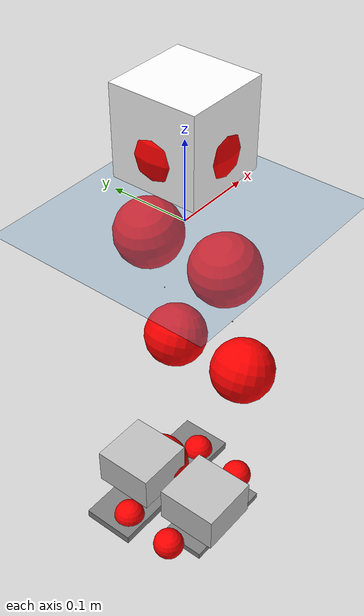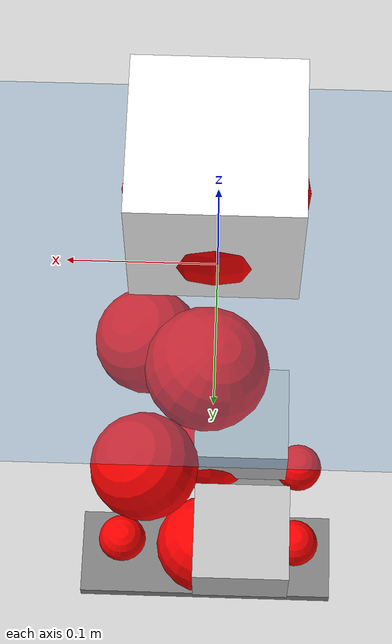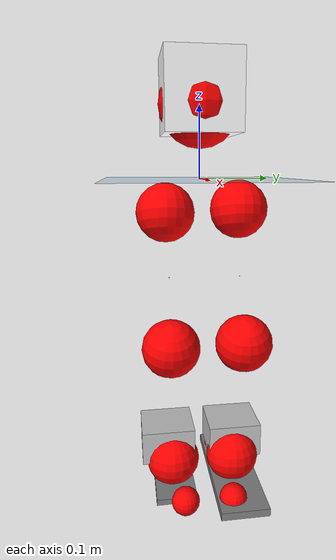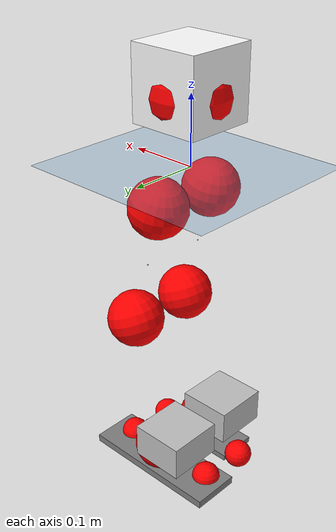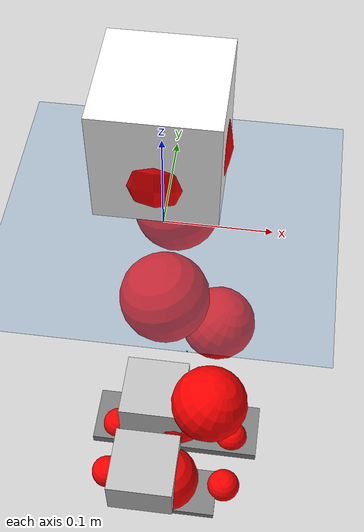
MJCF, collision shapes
<mujoco model="pi_12dof_release_v1">
  <compiler angle="radian" assetdir="assets" balanceinertia="true" inertiafromgeom="false"/>

  <option timestep="0.005" density="1.2" viscosity="2e-05"/>

  <size nkey="1"/>

  <visual>
    <quality shadowsize="8192"/>
    <map shadowclip="0.5"/>
  </visual>

  <default>
    <default class="/">
      <joint armature="0.01" damping="0.01" frictionloss="0.01"/>
      <geom contype="0" conaffinity="0" group="1" solref="-1000 -80"/>
      <site size="0.01 0.005 0.005" group="5"/>
      <general forcelimited="true" biastype="affine" gainprm="20" biasprm="0 -20 -0.5"/>
      <default class="foot">
        <geom size="0.0845 0.036 0.005" type="box" condim="6" group="4" priority="1" friction="0.9 0.2 0.2" solimp="0.015 1 0.005"/>
      </default>
      <default class="reward_collision_sphere">
        <geom group="5" rgba="1 0 0 1"/>
      </default>
    </default>
  </default>

  <asset>
    <texture type="skybox" colorspace="auto" name="//unnamed_texture_0" builtin="gradient" rgb1="0.95 0.95 0.95" rgb2="0.95 0.95 0.95" width="100" height="600"/>
    <texture type="2d" colorspace="auto" name="texplane" builtin="checker" rgb1="0.345 0.575 0.748" rgb2="0.345 0.575 0.748" markrgb="1 1 1" width="512" height="512"/>
    <material name="MatPlane" class="/" texture="texplane" texuniform="true" texrepeat="2 2" specular="0.9"/>
    <mesh name="baselink_1" class="/" file="baselink_1.STL"/>
    <mesh name="r_hip_pitch_link" class="/" file="r_hip_pitch_link.STL"/>
    <mesh name="r_hip_roll_link" class="/" file="r_hip_roll_link.STL"/>
    <mesh name="r_thigh_link" class="/" file="r_thigh_link.STL"/>
    <mesh name="r_calf_link" class="/" file="r_calf_link.STL"/>
    <mesh name="r_ankle_pitch_link" class="/" file="r_ankle_pitch_link.STL"/>
    <mesh name="r_ankle_roll_link" class="/" file="r_ankle_roll_link.STL"/>
    <mesh name="l_hip_pitch_link" class="/" file="l_hip_pitch_link.STL"/>
    <mesh name="l_hip_roll_link" class="/" file="l_hip_roll_link.STL"/>
    <mesh name="l_thigh_link" class="/" file="l_thigh_link.STL"/>
    <mesh name="l_calf_link" class="/" file="l_calf_link.STL"/>
    <mesh name="l_ankle_pitch_link" class="/" file="l_ankle_pitch_link.STL"/>
    <mesh name="l_ankle_roll_link" class="/" file="l_ankle_roll_link.STL"/>
  </asset>

  <worldbody>
    <geom name="floor" class="/" size="100 100 0.125" type="plane" group="0" material="MatPlane"/>
    <light name="toplight_shadow" class="/" pos="0 0 5" dir="0.0990148 0.0990148 -0.990148" type="directional" ambient="0.04 0.04 0.04" diffuse="0.55 0.55 0.55" specular="0.12 0.12 0.12"/>
    <light name="toplight_fill" class="/" pos="0 0 5" dir="0.0990148 0.0990148 -0.990148" type="directional" castshadow="false" ambient="0.04 0.04 0.04" diffuse="0.3 0.3 0.3" specular="0.08 0.08 0.08"/>
    <body name="trunk" pos="0.00153582 0.000469707 0.00055384" quat="1 0.000635454 -0.000577397 -0.000348207">
      <inertial pos="0.00431991 0.00265426 0.0585672" quat="0.688928 0.0079428 0.015779 0.724615" mass="2.57384" diaginertia="0.0186758 0.000730282 0.0216252"/>
      <joint name="//unnamed_joint_0" type="free"/>
      <geom name="//unnamed_geom_1" class="/" type="mesh" density="0" rgba="1 1 1 1" mesh="baselink_1"/>
      <geom name="//unnamed_geom_2" class="/" size="0.0526493 0.0526493 0.0526493" pos="0 0 0.11255" type="box" rgba="1 1 1 1"/>
      <geom name="//unnamed_geom_3" class="reward_collision_sphere" size="0.0579142" pos="0 0 0.0984816"/>
      <site name="imu" class="/" pos="0.0238835 -0.0107291 -0.0140286" size="0.0105299"/>
      <camera name="track" class="/" pos="0 -1.21931 0" quat="0.707107 0.707107 0 0" mode="trackcom"/>
      <camera name="ego_camera" class="/" pos="0.0856816 0 0.253238" quat="-0.5 -0.5 0.5 0.5"/>
      <body name="r_hip_pitch_link" pos="0.0035925 -0.0156832 -0.0474633" quat="0.992184 -0.00010938 -0.12478 0.000572941">
        <inertial pos="-0.00192481 -0.0353717 -0.000822393" quat="-0.018597 0.705941 -0.0263394 0.707536" mass="0.447295" diaginertia="0.00021966 8.27231e-06 0.000468406"/>
        <joint name="r_hip_pitch_joint" class="/" pos="0 0 0" axis="0.0169443 -0.999666 -0.0195015" range="-1.74561 1.32328" armature="0.00967555" damping="0.0299783" frictionloss="0.00937608"/>
        <geom name="//unnamed_geom_4" class="/" type="mesh" density="0" rgba="0.75294 0.75294 0.75294 1" mesh="r_hip_pitch_link"/>
        <geom name="//unnamed_geom_5" class="/" size="0.000526493 0.000526493 0.000526493" type="box" rgba="0.75294 0.75294 0.75294 1"/>
        <body name="r_hip_roll_link" pos="0.0027237 -0.0353837 -0.000611597" quat="1 0.000237027 0.000255273 -7.35096e-05">
          <inertial pos="0.000292754 -0.000722179 -0.0889858" quat="0.710349 -0.0871858 -0.0879836 0.692865" mass="0.461198" diaginertia="0.000686492 2.37116e-05 0.000696022"/>
          <joint name="r_hip_roll_joint" class="/" pos="0 0 0" axis="-0.999731 0.00250493 0.0230565" range="-0.058253 0.535652" armature="0.00946629" damping="0" frictionloss="0.0100101"/>
          <geom name="//unnamed_geom_6" class="/" type="mesh" density="0" rgba="0.75294 0.75294 0.75294 1" mesh="r_hip_roll_link"/>
          <geom name="//unnamed_geom_7" class="/" size="0.000526493 0.000526493 0.000526493" type="box" rgba="0.75294 0.75294 0.75294 1"/>
          <geom name="//unnamed_geom_8" class="reward_collision_sphere" size="0.0421194"/>
          <body name="r_thigh_link" pos="-0.00182293 0.00179293 -0.0928278" quat="1 0.000309457 -0.000618244 -0.000696845">
            <inertial pos="-0.00139266 0.000939883 -0.069545" quat="0.737927 0.674765 -0.000655254 -0.0124429" mass="0.129416" diaginertia="0.00024128 8.01952e-06 0.000306003"/>
            <joint name="r_thigh_joint" class="/" pos="0 0 0" axis="-0.000399272 -0.00113997 -0.999999" range="-0.260072 0.627591" armature="0.0100759" damping="0.00739656" frictionloss="0.0117514"/>
            <geom name="//unnamed_geom_9" class="/" type="mesh" density="0" rgba="0.75294 0.75294 0.75294 1" mesh="r_thigh_link"/>
            <geom name="//unnamed_geom_10" class="/" size="0.000526493 0.000526493 0.000526493" type="box" rgba="0.75294 0.75294 0.75294 1"/>
            <body name="r_calf_link" pos="0.000379879 -0.00104333 -0.101927" quat="0.9477 -8.83893e-05 0.319162 0.000291191">
              <inertial pos="-0.00313026 -0.000807026 -0.0974383" quat="0.999994 -0.00268746 0.000209623 0.00230798" mass="0.921994" diaginertia="0.00672734 0.000297639 0.000965035"/>
              <joint name="r_calf_joint" class="/" pos="0 0 0" axis="-0.00540048 -0.999976 0.00425328" range="-1.67971 0.663754" armature="0.0107154" damping="0.00596338" frictionloss="0.00987922"/>
              <geom name="//unnamed_geom_11" class="/" type="mesh" density="0" rgba="0.75294 0.75294 0.75294 1" mesh="r_calf_link"/>
              <geom name="//unnamed_geom_12" class="/" size="0.000526493 0.000526493 0.000526493" type="box" rgba="0.75294 0.75294 0.75294 1"/>
              <geom name="//unnamed_geom_13" class="reward_collision_sphere" size="0.0421194"/>
              <body name="r_ankle_pitch_link" pos="-0.000438918 -0.00375033 -0.198275" quat="0.979985 1.61006e-06 -0.199071 0.000299984">
                <inertial pos="0.00560509 0.0045164 -0.00175619" quat="-0.00961684 0.705355 0.00130213 0.708788" mass="0.218625" diaginertia="0.000620622 1.8995e-05 0.000683082"/>
                <joint name="r_ankle_pitch_joint" class="/" pos="0 0 0" axis="0.0142945 -0.999896 -0.00196266" stiffness="0.00152117" range="-1.35225 0.553566" armature="0.00915134" damping="0.0188142" frictionloss="0.0107289"/>
                <geom name="//unnamed_geom_14" class="/" type="mesh" density="0" rgba="0.75294 0.75294 0.75294 1" mesh="r_ankle_pitch_link"/>
                <geom name="//unnamed_geom_15" class="/" size="0.0410664 0.0421194 0.0263246" type="box" rgba="0.75294 0.75294 0.75294 1"/>
                <body name="r_ankle_roll_link" pos="0.0834744 0.00719163 0.000802526" quat="1 -9.22119e-05 0.000616579 0.000130834">
                  <inertial pos="-0.0262013 -3.32066e-06 -0.0239246" quat="0.561869 0.429266 0.43444 0.557939" mass="0.589454" diaginertia="0.0023299 8.88815e-05 0.00158066"/>
                  <joint name="r_ankle_roll_joint" class="/" pos="0 0 0" axis="-0.999972 -0.000427679 -0.00746124" stiffness="0.00390835" range="-0.147877 0.192367" armature="0.011794" damping="0.0189698" frictionloss="0.00922478"/>
                  <geom name="//unnamed_geom_16" class="/" type="mesh" density="0" rgba="0.75294 0.75294 0.75294 1" mesh="r_ankle_roll_link"/>
                  <geom name="//unnamed_geom_17" class="/" type="mesh" rgba="0.75294 0.75294 0.75294 1" mesh="r_ankle_roll_link"/>
                  <geom name="right_foot" class="foot" size="0.0665081 0.03107 0.00454204" pos="-0.0582635 0 -0.0619027"/>
                  <geom name="//unnamed_geom_19" class="reward_collision_sphere" size="0.0421194" pos="-0.0571211 0 -0.0281376"/>
                  <geom name="//unnamed_geom_20" class="reward_collision_sphere" size="0.0210597" pos="0.0171363 0.0121931 -0.0562752"/>
                  <geom name="//unnamed_geom_21" class="reward_collision_sphere" size="0.0210597" pos="-0.137091 0.0121931 -0.0562752"/>
                  <site name="right_foot" class="foot" pos="-0.0582635 0 -0.0619027" size="0.0105299"/>
                </body>
              </body>
            </body>
          </body>
        </body>
      </body>
      <body name="l_hip_pitch_link" pos="0.00411977 0.0162867 -0.0437696" quat="0.992199 -0.000908976 -0.124657 0.000189714">
        <inertial pos="0.00272354 0.0297478 9.48884e-05" quat="-0.0388992 0.706418 0.0288591 0.706136" mass="0.461651" diaginertia="0.000250022 8.6179e-06 0.000591385"/>
        <joint name="l_hip_pitch_joint" class="/" pos="0 0 0" axis="-0.00453077 0.999973 0.00571508" range="-1.18544 1.8119" armature="0.00839113" damping="0.0298425" frictionloss="0.00925816"/>
        <geom name="//unnamed_geom_22" class="/" type="mesh" density="0" rgba="0.75294 0.75294 0.75294 1" mesh="l_hip_pitch_link"/>
        <geom name="//unnamed_geom_23" class="/" size="0.000526493 0.000526493 0.000526493" type="box" rgba="0.75294 0.75294 0.75294 1"/>
        <body name="l_hip_roll_link" pos="-0.000320448 0.0400535 -6.94649e-05" quat="1 -8.44762e-05 -3.89553e-05 -0.000213802">
          <inertial pos="-0.00286051 -0.00162914 -0.0887412" quat="0.695734 -0.0797141 -0.0806811 0.709288" mass="0.452262" diaginertia="0.000647517 2.33244e-05 0.000730586"/>
          <joint name="l_hip_roll_joint" class="/" pos="0 0 0" axis="-0.999751 -0.0206224 0.00855945" stiffness="0.00941543" range="-0.592426 0.113004" armature="0.0115707" damping="0" frictionloss="0.0120061"/>
          <geom name="//unnamed_geom_24" class="/" type="mesh" density="0" rgba="0.75294 0.75294 0.75294 1" mesh="l_hip_roll_link"/>
          <geom name="//unnamed_geom_25" class="/" size="0.000526493 0.000526493 0.000526493" type="box" rgba="0.75294 0.75294 0.75294 1"/>
          <geom name="//unnamed_geom_26" class="reward_collision_sphere" size="0.0421194"/>
          <body name="l_thigh_link" pos="-0.000224644 -0.00191987 -0.0976704" quat="1 -0.000879349 0.000226331 -0.000124439">
            <inertial pos="-0.000110654 -0.00253449 -0.0681325" quat="0.673649 0.738528 0.0047723 0.0274025" mass="0.129939" diaginertia="0.000243973 8.08512e-06 0.00033512"/>
            <joint name="l_thigh_joint" class="/" pos="0 0 0" axis="0.00966525 -0.00371196 -0.999946" range="-0.610692 0.298336" armature="0.011125" damping="0.0185478" frictionloss="0.0105678"/>
            <geom name="//unnamed_geom_27" class="/" type="mesh" density="0" rgba="0.75294 0.75294 0.75294 1" mesh="l_thigh_link"/>
            <geom name="//unnamed_geom_28" class="/" size="0.000526493 0.000526493 0.000526493" type="box" rgba="0.75294 0.75294 0.75294 1"/>
            <body name="l_calf_link" pos="-0.000570821 0.00305362 -0.0991193" quat="0.947501 0.000257968 0.319753 0.000583268">
              <inertial pos="0.00378205 0.00177136 -0.100744" quat="0.999958 -0.00818964 0.00373522 0.00155455" mass="0.940471" diaginertia="0.00668249 0.000289019 0.000998473"/>
              <joint name="l_calf_joint" class="/" pos="0 0 0" axis="0.00275383 0.999986 -0.00452072" range="-0.610515 1.76444" armature="0.0119124" damping="0.0129143" frictionloss="0.0120679"/>
              <geom name="//unnamed_geom_29" class="/" type="mesh" density="0" rgba="0.75294 0.75294 0.75294 1" mesh="l_calf_link"/>
              <geom name="//unnamed_geom_30" class="/" size="0.000526493 0.000526493 0.000526493" type="box" rgba="0.75294 0.75294 0.75294 1"/>
              <geom name="//unnamed_geom_31" class="reward_collision_sphere" size="0.0421194"/>
              <body name="l_ankle_pitch_link" pos="0.000417447 -0.00173298 -0.200621" quat="0.980036 0.000481176 -0.198817 0.000170826">
                <inertial pos="0.00473796 -0.00348696 0.00190857" quat="-0.00265044 0.705889 0.00268229 0.708313" mass="0.23092" diaginertia="0.000657318 1.9997e-05 0.000726154"/>
                <joint name="l_ankle_pitch_joint" class="/" pos="0 0 0" axis="0.00349894 0.999981 -0.00507514" range="-0.515548 1.28027" armature="0.0101754" damping="0.0101387" frictionloss="0.00751909"/>
                <geom name="//unnamed_geom_32" class="/" type="mesh" density="0" rgba="0.75294 0.75294 0.75294 1" mesh="l_ankle_pitch_link"/>
                <geom name="//unnamed_geom_33" class="/" size="0.0410664 0.0421194 0.0263246" type="box" rgba="0.75294 0.75294 0.75294 1"/>
                <body name="l_ankle_roll_link" pos="0.0888656 -0.00390851 0.00233244" quat="1 0.000194821 0.000126302 -0.000457989">
                  <inertial pos="-0.0296823 -0.000390547 -0.0198859" quat="0.56752 0.429625 0.435387 0.551164" mass="0.630527" diaginertia="0.00221955 8.60842e-05 0.00159615"/>
                  <joint name="l_ankle_roll_joint" class="/" pos="0 0 0" axis="-0.999967 0.00107388 -0.0080583" stiffness="0.00414679" range="-0.139441 0.155489" armature="0.0092972" damping="0.0143079" frictionloss="0.0127427"/>
                  <geom name="//unnamed_geom_34" class="/" type="mesh" density="0" rgba="0.75294 0.75294 0.75294 1" mesh="l_ankle_roll_link"/>
                  <geom name="//unnamed_geom_35" class="/" type="mesh" rgba="0.75294 0.75294 0.75294 1" mesh="l_ankle_roll_link"/>
                  <geom name="left_foot" class="foot" size="0.110402 0.0367417 0.00594589" pos="-0.0582635 0 -0.0619027"/>
                  <geom name="//unnamed_geom_37" class="reward_collision_sphere" size="0.0421194" pos="-0.0571211 0 -0.0281376"/>
                  <geom name="//unnamed_geom_38" class="reward_collision_sphere" size="0.0210597" pos="0.0171363 -0.0121931 -0.0562752"/>
                  <geom name="//unnamed_geom_39" class="reward_collision_sphere" size="0.0210597" pos="-0.137091 -0.0121931 -0.0562752"/>
                  <site name="left_foot" class="foot" pos="-0.0582635 0 -0.0619027" size="0.0105299"/>
                </body>
              </body>
            </body>
          </body>
        </body>
      </body>
    </body>
  </worldbody>

  <contact>
    <pair class="/" geom1="floor" geom2="right_foot" name="//unnamed_contact_1"/>
    <pair class="/" geom1="floor" geom2="left_foot" name="//unnamed_contact_0"/>
  </contact>

  <actuator>
    <general name="r_hip_pitch_joint" class="/" joint="r_hip_pitch_joint" forcerange="-23.9537 23.9537" gainprm="20.1604" biasprm="0 -20.1604 -0.493024"/>
    <general name="r_hip_roll_joint" class="/" joint="r_hip_roll_joint" forcerange="-23.9097 23.9097" gainprm="20.1604" biasprm="0 -20.1604 -0.493024"/>
    <general name="r_thigh_joint" class="/" joint="r_thigh_joint" forcerange="-21.2026 21.2026" gainprm="20.1604" biasprm="0 -20.1604 -0.493024"/>
    <general name="r_calf_joint" class="/" joint="r_calf_joint" forcerange="-22.2305 22.2305" gainprm="20.1604" biasprm="0 -20.1604 -0.493024"/>
    <general name="r_ankle_pitch_joint" class="/" joint="r_ankle_pitch_joint" forcerange="-23.7043 23.7043" gainprm="20.1604" biasprm="0 -20.1604 -0.493024"/>
    <general name="r_ankle_roll_joint" class="/" joint="r_ankle_roll_joint" forcerange="-22.4534 22.4534" gainprm="20.1604" biasprm="0 -20.1604 -0.493024"/>
    <general name="l_hip_pitch_joint" class="/" joint="l_hip_pitch_joint" forcerange="-20.4194 20.4194" gainprm="20.1604" biasprm="0 -20.1604 -0.493024"/>
    <general name="l_hip_roll_joint" class="/" joint="l_hip_roll_joint" forcerange="-21.6364 21.6364" gainprm="20.1604" biasprm="0 -20.1604 -0.493024"/>
    <general name="l_thigh_joint" class="/" joint="l_thigh_joint" forcerange="-20.0878 20.0878" gainprm="20.1604" biasprm="0 -20.1604 -0.493024"/>
    <general name="l_calf_joint" class="/" joint="l_calf_joint" forcerange="-21.9686 21.9686" gainprm="20.1604" biasprm="0 -20.1604 -0.493024"/>
    <general name="l_ankle_pitch_joint" class="/" joint="l_ankle_pitch_joint" forcerange="-23.3117 23.3117" gainprm="20.1604" biasprm="0 -20.1604 -0.493024"/>
    <general name="l_ankle_roll_joint" class="/" joint="l_ankle_roll_joint" forcerange="-24.2875 24.2875" gainprm="20.1604" biasprm="0 -20.1604 -0.493024"/>
  </actuator>

  <sensor>
    <gyro site="imu" name="imu_angular_velocity"/>
    <velocimeter site="imu" name="imu_linear_velocity"/>
    <framelinvel objtype="site" objname="left_foot" name="left_foot_global_linear_velocity"/>
    <framelinvel objtype="site" objname="right_foot" name="right_foot_global_linear_velocity"/>
  </sensor>

  <keyframe>
    <key name="home" qpos="0 0 0.291 1 0 0 0 0.4 0 0 -0.8 0.4 0 -0.4 0 0 0.8 -0.4 0"/>
  </keyframe>
</mujoco>
